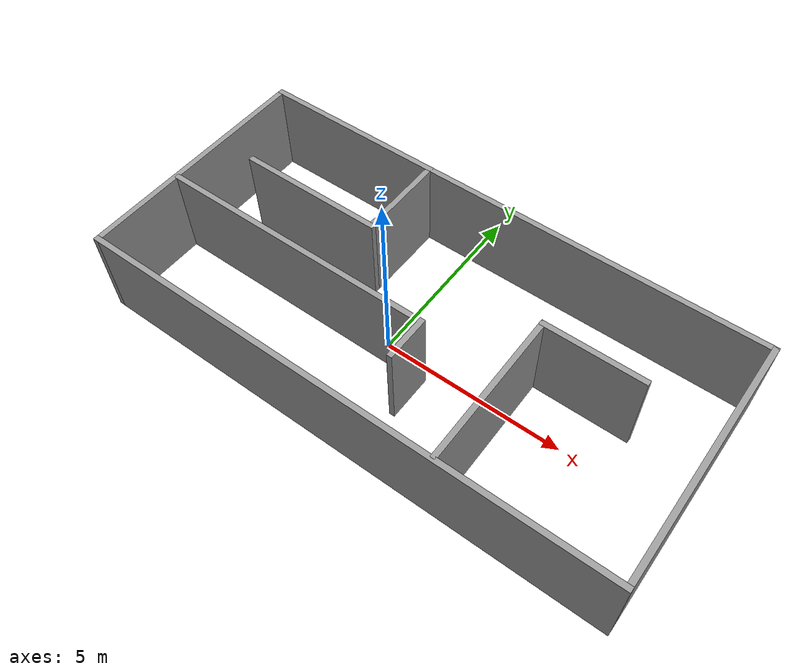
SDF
<?xml version='1.0'?>
<sdf version='1.7'>
  <model name='room'>
    <pose>0.80055 0.304384 0 0 -0 0</pose>
    <link name='Wall_14'>
      <collision name='Wall_14_Collision'>
        <geometry>
          <box>
            <size>6.75 0.15 2.5</size>
          </box>
        </geometry>
        <pose>0 0 1.25 0 -0 0</pose>
      </collision>
      <visual name='Wall_14_Visual'>
        <pose>0 0 1.25 0 -0 0</pose>
        <geometry>
          <box>
            <size>6.75 0.15 2.5</size>
          </box>
        </geometry>
        <material>
          <script>
            <uri>file://media/materials/scripts/gazebo.material</uri>
            <name>Gazebo/Grey</name>
          </script>
          <ambient>1 1 1 1</ambient>
        </material>
        <meta>
          <layer>0</layer>
        </meta>
      </visual>
      <pose>7.175 0 0 0 -0 -1.5708</pose>
    </link>
    <link name='Wall_15'>
      <collision name='Wall_15_Collision'>
        <geometry>
          <box>
            <size>14.5 0.15 2.5</size>
          </box>
        </geometry>
        <pose>0 0 1.25 0 -0 0</pose>
      </collision>
      <visual name='Wall_15_Visual'>
        <pose>0 0 1.25 0 -0 0</pose>
        <geometry>
          <box>
            <size>14.5 0.15 2.5</size>
          </box>
        </geometry>
        <material>
          <script>
            <uri>file://media/materials/scripts/gazebo.material</uri>
            <name>Gazebo/Grey</name>
          </script>
          <ambient>1 1 1 1</ambient>
        </material>
        <meta>
          <layer>0</layer>
        </meta>
      </visual>
      <pose>0 -3.3 0 0 -0 3.14159</pose>
    </link>
    <link name='Wall_16'>
      <collision name='Wall_16_Collision'>
        <geometry>
          <box>
            <size>6.75 0.15 2.5</size>
          </box>
        </geometry>
        <pose>0 0 1.25 0 -0 0</pose>
      </collision>
      <visual name='Wall_16_Visual'>
        <pose>0 0 1.25 0 -0 0</pose>
        <geometry>
          <box>
            <size>6.75 0.15 2.5</size>
          </box>
        </geometry>
        <material>
          <script>
            <uri>file://media/materials/scripts/gazebo.material</uri>
            <name>Gazebo/Grey</name>
          </script>
          <ambient>1 1 1 1</ambient>
        </material>
        <meta>
          <layer>0</layer>
        </meta>
      </visual>
      <pose>-7.175 0 0 0 -0 1.5708</pose>
    </link>
    <link name='Wall_18'>
      <collision name='Wall_18_Collision'>
        <geometry>
          <box>
            <size>14.5 0.15 2.5</size>
          </box>
        </geometry>
        <pose>0 0 1.25 0 -0 0</pose>
      </collision>
      <visual name='Wall_18_Visual'>
        <pose>0 0 1.25 0 -0 0</pose>
        <geometry>
          <box>
            <size>14.5 0.15 2.5</size>
          </box>
        </geometry>
        <material>
          <script>
            <uri>file://media/materials/scripts/gazebo.material</uri>
            <name>Gazebo/Grey</name>
          </script>
          <ambient>1 1 1 1</ambient>
        </material>
        <meta>
          <layer>0</layer>
        </meta>
      </visual>
      <pose>0 3.3 0 0 -0 0</pose>
    </link>
    <link name='Wall_20'>
      <collision name='Wall_20_Collision'>
        <geometry>
          <box>
            <size>2.5 0.15 2.5</size>
          </box>
        </geometry>
        <pose>0 0 1.25 0 -0 0</pose>
      </collision>
      <visual name='Wall_20_Visual'>
        <pose>0 0 1.25 0 -0 0</pose>
        <geometry>
          <box>
            <size>2.5 0.15 2.5</size>
          </box>
        </geometry>
        <material>
          <script>
            <uri>file://media/materials/scripts/gazebo.material</uri>
            <name>Gazebo/Grey</name>
          </script>
          <ambient>1 1 1 1</ambient>
        </material>
        <meta>
          <layer>0</layer>
        </meta>
      </visual>
      <pose>-2.18205 2.08001 0 0 -0 -1.5708</pose>
    </link>
    <link name='Wall_21'>
      <collision name='Wall_21_Collision'>
        <geometry>
          <box>
            <size>4 0.15 2.5</size>
          </box>
        </geometry>
        <pose>0 0 1.25 0 -0 0</pose>
      </collision>
      <visual name='Wall_21_Visual'>
        <pose>0 0 1.25 0 -0 0</pose>
        <geometry>
          <box>
            <size>4 0.15 2.5</size>
          </box>
        </geometry>
        <material>
          <script>
            <uri>file://media/materials/scripts/gazebo.material</uri>
            <name>Gazebo/Grey</name>
          </script>
          <ambient>1 1 1 1</ambient>
        </material>
        <meta>
          <layer>0</layer>
        </meta>
      </visual>
      <pose>-4.10705 0.905012 0 0 -0 3.14159</pose>
    </link>
    <link name='Wall_23'>
      <collision name='Wall_23_Collision'>
        <geometry>
          <box>
            <size>7.75 0.15 2.5</size>
          </box>
        </geometry>
        <pose>0 0 1.25 0 -0 0</pose>
      </collision>
      <visual name='Wall_23_Visual'>
        <pose>0 0 1.25 0 -0 0</pose>
        <geometry>
          <box>
            <size>7.75 0.15 2.5</size>
          </box>
        </geometry>
        <material>
          <script>
            <uri>file://media/materials/scripts/gazebo.material</uri>
            <name>Gazebo/Grey</name>
          </script>
          <ambient>1 1 1 1</ambient>
        </material>
        <meta>
          <layer>0</layer>
        </meta>
      </visual>
      <pose>-3.30708 -0.685009 0 0 -0 0</pose>
    </link>
    <link name='Wall_27'>
      <collision name='Wall_27_Collision'>
        <geometry>
          <box>
            <size>1.25 0.15 2.5</size>
          </box>
        </geometry>
        <pose>0 0 1.25 0 -0 0</pose>
      </collision>
      <visual name='Wall_27_Visual'>
        <pose>0 0 1.25 0 -0 0</pose>
        <geometry>
          <box>
            <size>1.25 0.15 2.5</size>
          </box>
        </geometry>
        <material>
          <script>
            <uri>file://media/materials/scripts/gazebo.material</uri>
            <name>Gazebo/Grey</name>
          </script>
          <ambient>1 1 1 1</ambient>
        </material>
        <meta>
          <layer>0</layer>
        </meta>
      </visual>
      <pose>0.492921 -1.23501 0 0 -0 -1.5708</pose>
    </link>
    <link name='Wall_29'>
      <collision name='Wall_29_Collision'>
        <geometry>
          <box>
            <size>4.25 0.15 2.5</size>
          </box>
        </geometry>
        <pose>0 0 1.25 0 -0 0</pose>
      </collision>
      <visual name='Wall_29_Visual'>
        <pose>0 0 1.25 0 -0 0</pose>
        <geometry>
          <box>
            <size>4.25 0.15 2.5</size>
          </box>
        </geometry>
        <material>
          <script>
            <uri>file://media/materials/scripts/gazebo.material</uri>
            <name>Gazebo/Grey</name>
          </script>
          <ambient>1 1 1 1</ambient>
        </material>
        <meta>
          <layer>0</layer>
        </meta>
      </visual>
      <pose>2.7078 -1.16788 0 0 -0 1.5708</pose>
    </link>
    <link name='Wall_30'>
      <collision name='Wall_30_Collision'>
        <geometry>
          <box>
            <size>2.75 0.15 2.5</size>
          </box>
        </geometry>
        <pose>0 0 1.25 0 -0 0</pose>
      </collision>
      <visual name='Wall_30_Visual'>
        <pose>0 0 1.25 0 -0 0</pose>
        <geometry>
          <box>
            <size>2.75 0.15 2.5</size>
          </box>
        </geometry>
        <material>
          <script>
            <uri>file://media/materials/scripts/gazebo.material</uri>
            <name>Gazebo/Grey</name>
          </script>
          <ambient>1 1 1 1</ambient>
        </material>
        <meta>
          <layer>0</layer>
        </meta>
      </visual>
      <pose>4.0078 0.88212 0 0 -0 0</pose>
    </link>
    <static>1</static>
  </model>
</sdf>
